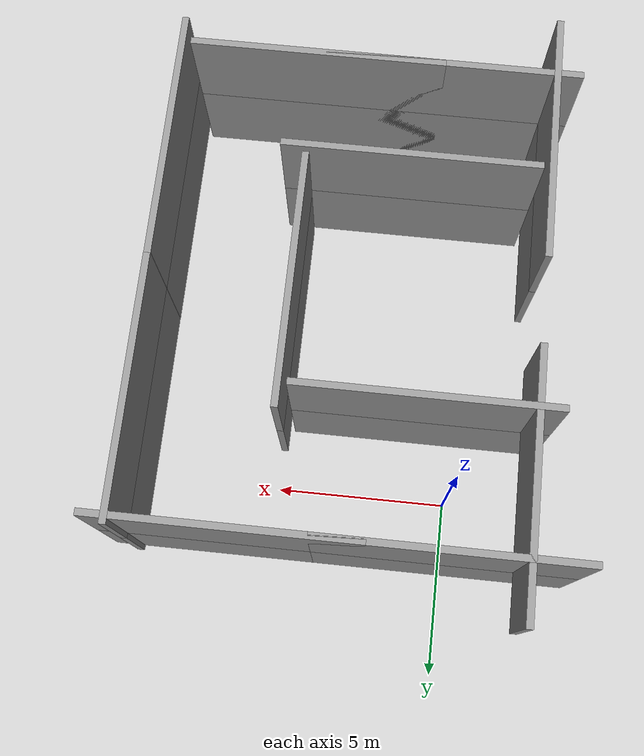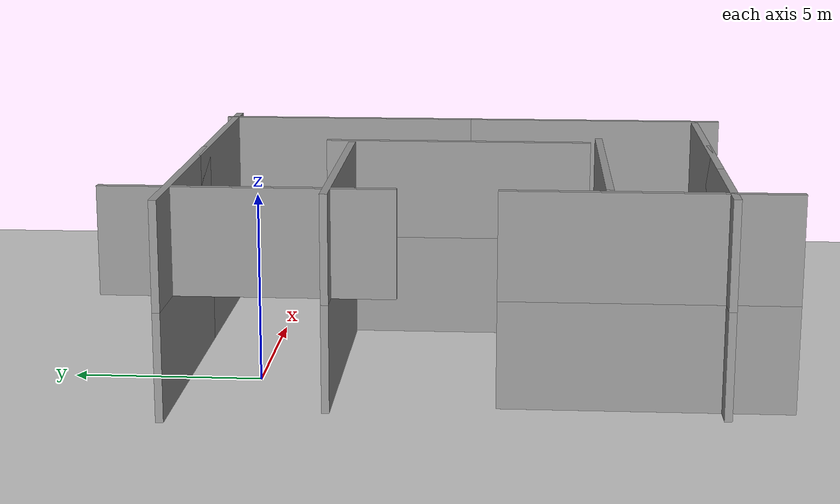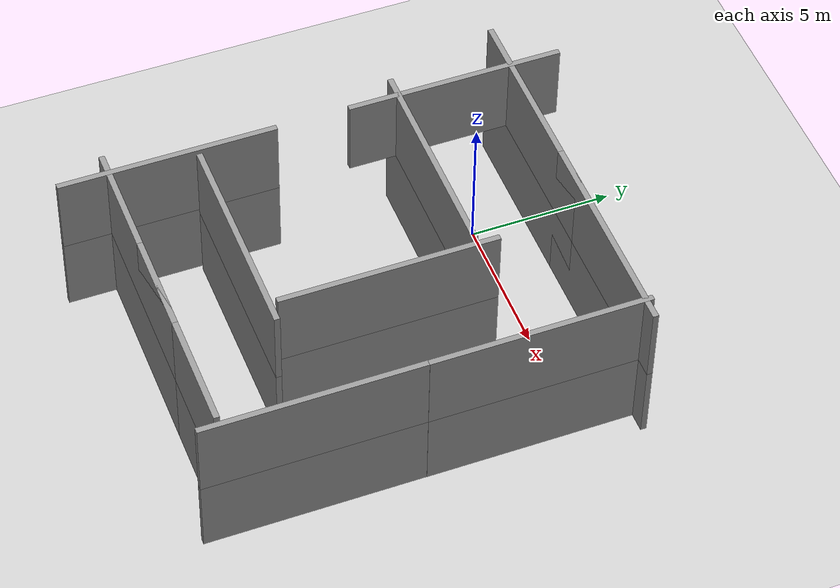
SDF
<sdf version="1.7">
 <world name="default">
  <light name="sun" type="directional">
   <pose>0 0 10 0 -0 0</pose>
   <diffuse>0.8 0.8 0.8 1</diffuse>
   <specular>0.2 0.2 0.2 1</specular>
   <attenuation>
    <range>1000</range>
    <constant>0.9</constant>
    <linear>0.01</linear>
    <quadratic>0.001</quadratic>
   </attenuation>
   <direction>-0.5 0.1 -0.9</direction>
   <spot><inner_angle>0</inner_angle><outer_angle>0</outer_angle><falloff>0</falloff></spot>
  </light>
  <model name="ground_plane">
   <static>1</static>
   <link name="link">
    <collision name="collision">
     <geometry><plane><normal>0 0 1</normal><size>100 100</size></plane></geometry>
     <surface>
      <contact><collide_bitmask>65535</collide_bitmask></contact>
      <friction><ode><mu>100</mu><mu2>50</mu2></ode></friction>
     </surface>
    </collision>
    <visual name="visual">
     <cast_shadows>0</cast_shadows>
     <geometry><plane><normal>0 0 1</normal><size>100 100</size></plane></geometry>
     <material>
      <script><uri>file://media/materials/scripts/gazebo.material</uri><name>Gazebo/Grey</name></script>
     </material>
    </visual>
   </link>
  </model>
  <physics name="default_physics" default="0" type="ode">
   <ode>
    <solver>
     <type>quick</type>
     <iters>10</iters>
     <sor>1.3</sor>
     <use_dynamic_moi_rescaling>0</use_dynamic_moi_rescaling>
    </solver>
    <constraints>
     <cfm>0</cfm>
     <erp>0.2</erp>
     <contact_max_correcting_vel>100</contact_max_correcting_vel>
     <contact_surface_layer>0.001</contact_surface_layer>
    </constraints>
   </ode>
   <max_step_size>0.004</max_step_size>
   <real_time_factor>1</real_time_factor>
   <real_time_update_rate>250</real_time_update_rate>
  </physics>
  <model name="grey_wall2">
   <static>1</static>
   <link name="link">
    <pose>0 0 1.4 0 -0 0</pose>
    <collision name="collision"><geometry><box><size>7.5 0.2 2.8</size></box></geometry></collision>
    <visual name="visual">
     <cast_shadows>0</cast_shadows>
     <geometry><box><size>7.5 0.2 2.8</size></box></geometry>
     <material>
      <script>
       <uri>model://grey_wall/materials/scripts</uri>
       <uri>model://grey_wall/materials/textures</uri>
       <name>vrc/grey_wall</name>
      </script>
     </material>
    </visual>
   </link>
   <pose>0 2 0 0 -0 0</pose>
  </model>
  <model name="grey_wall3">
   <static>1</static>
   <link name="link">
    <pose>0 0 1.4 0 -0 0</pose>
    <collision name="collision"><geometry><box><size>7.5 0.2 2.8</size></box></geometry></collision>
    <visual name="visual">
     <cast_shadows>0</cast_shadows>
     <geometry><box><size>7.5 0.2 2.8</size></box></geometry>
     <material>
      <script>
       <uri>model://grey_wall/materials/scripts</uri>
       <uri>model://grey_wall/materials/textures</uri>
       <name>vrc/grey_wall</name>
      </script>
     </material>
    </visual>
   </link>
   <pose>1 -2 0 0 -0 0</pose>
  </model>
  <model name="grey_wall4">
   <static>1</static>
   <link name="link">
    <pose>0 0 1.4 0 -0 0</pose>
    <collision name="collision"><geometry><box><size>7.5 0.2 2.8</size></box></geometry></collision>
    <visual name="visual">
     <cast_shadows>0</cast_shadows>
     <geometry><box><size>7.5 0.2 2.8</size></box></geometry>
     <material>
      <script>
       <uri>model://grey_wall/materials/scripts</uri>
       <uri>model://grey_wall/materials/textures</uri>
       <name>vrc/grey_wall</name>
      </script>
     </material>
    </visual>
   </link>
   <pose>6 2 0 0 -0 0</pose>
  </model>
  <model name="grey_wall5">
   <static>1</static>
   <link name="link">
    <pose>0 0 1.4 0 -0 0</pose>
    <collision name="collision"><geometry><box><size>7.5 0.2 2.8</size></box></geometry></collision>
    <visual name="visual">
     <cast_shadows>0</cast_shadows>
     <geometry><box><size>7.5 0.2 2.8</size></box></geometry>
     <material>
      <script>
       <uri>model://grey_wall/materials/scripts</uri>
       <uri>model://grey_wall/materials/textures</uri>
       <name>vrc/grey_wall</name>
      </script>
     </material>
    </visual>
   </link>
   <pose>9 -1.5 0 0 0 -1.57</pose>
  </model>
  <model name="grey_wall6">
   <static>1</static>
   <link name="link">
    <pose>0 0 1.4 0 -0 0</pose>
    <collision name="collision"><geometry><box><size>7.5 0.2 2.8</size></box></geometry></collision>
    <visual name="visual">
     <cast_shadows>0</cast_shadows>
     <geometry><box><size>7.5 0.2 2.8</size></box></geometry>
     <material>
      <script>
       <uri>model://grey_wall/materials/scripts</uri>
       <uri>model://grey_wall/materials/textures</uri>
       <name>vrc/grey_wall</name>
      </script>
     </material>
    </visual>
   </link>
   <pose>5 -5 0 0 0 -1.57</pose>
  </model>
  <model name="grey_wall7">
   <static>1</static>
   <link name="link">
    <pose>0 0 1.4 0 -0 0</pose>
    <collision name="collision"><geometry><box><size>7.5 0.2 2.8</size></box></geometry></collision>
    <visual name="visual">
     <cast_shadows>0</cast_shadows>
     <geometry><box><size>7.5 0.2 2.8</size></box></geometry>
     <material>
      <script>
       <uri>model://grey_wall/materials/scripts</uri>
       <uri>model://grey_wall/materials/textures</uri>
       <name>vrc/grey_wall</name>
      </script>
     </material>
    </visual>
   </link>
   <pose>9 -9 0 0 0 -1.57</pose>
  </model>
  <model name="grey_wall8">
   <static>1</static>
   <link name="link">
    <pose>0 0 1.4 0 -0 0</pose>
    <collision name="collision"><geometry><box><size>7.5 0.2 2.8</size></box></geometry></collision>
    <visual name="visual">
     <cast_shadows>0</cast_shadows>
     <geometry><box><size>7.5 0.2 2.8</size></box></geometry>
     <material>
      <script>
       <uri>model://grey_wall/materials/scripts</uri>
       <uri>model://grey_wall/materials/textures</uri>
       <name>vrc/grey_wall</name>
      </script>
     </material>
    </visual>
   </link>
   <pose>2 -9 0 0 -0 0</pose>
  </model>
  <model name="grey_wall9">
   <static>1</static>
   <link name="link">
    <pose>0 0 1.4 0 -0 0</pose>
    <collision name="collision"><geometry><box><size>7.5 0.2 2.8</size></box></geometry></collision>
    <visual name="visual">
     <cast_shadows>0</cast_shadows>
     <geometry><box><size>7.5 0.2 2.8</size></box></geometry>
     <material>
      <script>
       <uri>model://grey_wall/materials/scripts</uri>
       <uri>model://grey_wall/materials/textures</uri>
       <name>vrc/grey_wall</name>
      </script>
     </material>
    </visual>
   </link>
   <pose>5 -12 0 0 -0 0</pose>
  </model>
  <model name="grey_wall10">
   <static>1</static>
   <link name="link">
    <pose>0 0 1.4 0 -0 0</pose>
    <collision name="collision"><geometry><box><size>7.5 0.2 2.8</size></box></geometry></collision>
    <visual name="visual">
     <cast_shadows>0</cast_shadows>
     <geometry><box><size>7.5 0.2 2.8</size></box></geometry>
     <material>
      <script>
       <uri>model://grey_wall/materials/scripts</uri>
       <uri>model://grey_wall/materials/textures</uri>
       <name>vrc/grey_wall</name>
      </script>
     </material>
    </visual>
   </link>
   <pose>1 -12 0 0 -0 0</pose>
  </model>
  <model name="grey_wall11">
   <static>1</static>
   <link name="link">
    <pose>0 0 1.4 0 -0 0</pose>
    <collision name="collision"><geometry><box><size>7.5 0.2 2.8</size></box></geometry></collision>
    <visual name="visual">
     <cast_shadows>0</cast_shadows>
     <geometry><box><size>7.5 0.2 2.8</size></box></geometry>
     <material>
      <script>
       <uri>model://grey_wall/materials/scripts</uri>
       <uri>model://grey_wall/materials/textures</uri>
       <name>vrc/grey_wall</name>
      </script>
     </material>
    </visual>
   </link>
   <pose>-2 -10 0 0 0 -1.57</pose>
  </model>
  <model name="grey_wall_up">
   <static>1</static>
   <link name="link">
    <pose>0 0 1.4 0 -0 0</pose>
    <collision name="collision"><geometry><box><size>7.5 0.2 2.8</size></box></geometry></collision>
    <visual name="visual">
     <cast_shadows>0</cast_shadows>
     <geometry><box><size>7.5 0.2 2.8</size></box></geometry>
     <material>
      <script>
       <uri>model://grey_wall/materials/scripts</uri>
       <uri>model://grey_wall/materials/textures</uri>
       <name>vrc/grey_wall</name>
      </script>
     </material>
    </visual>
   </link>
   <pose>-2 0 2.8 0 0 -1.57</pose>
  </model>
  <model name="grey_wall2_up">
   <static>1</static>
   <link name="link">
    <pose>0 0 1.4 0 -0 0</pose>
    <collision name="collision"><geometry><box><size>7.5 0.2 2.8</size></box></geometry></collision>
    <visual name="visual">
     <cast_shadows>0</cast_shadows>
     <geometry><box><size>7.5 0.2 2.8</size></box></geometry>
     <material>
      <script>
       <uri>model://grey_wall/materials/scripts</uri>
       <uri>model://grey_wall/materials/textures</uri>
       <name>vrc/grey_wall</name>
      </script>
     </material>
    </visual>
   </link>
   <pose>0 2 2.8 0 -0 0</pose>
  </model>
  <model name="grey_wall3_up">
   <static>1</static>
   <link name="link">
    <pose>0 0 1.4 0 -0 0</pose>
    <collision name="collision"><geometry><box><size>7.5 0.2 2.8</size></box></geometry></collision>
    <visual name="visual">
     <cast_shadows>0</cast_shadows>
     <geometry><box><size>7.5 0.2 2.8</size></box></geometry>
     <material>
      <script>
       <uri>model://grey_wall/materials/scripts</uri>
       <uri>model://grey_wall/materials/textures</uri>
       <name>vrc/grey_wall</name>
      </script>
     </material>
    </visual>
   </link>
   <pose>1 -2 2.8 0 -0 0</pose>
  </model>
  <model name="grey_wall4_up">
   <static>1</static>
   <link name="link">
    <pose>0 0 1.4 0 -0 0</pose>
    <collision name="collision"><geometry><box><size>7.5 0.2 2.8</size></box></geometry></collision>
    <visual name="visual">
     <cast_shadows>0</cast_shadows>
     <geometry><box><size>7.5 0.2 2.8</size></box></geometry>
     <material>
      <script>
       <uri>model://grey_wall/materials/scripts</uri>
       <uri>model://grey_wall/materials/textures</uri>
       <name>vrc/grey_wall</name>
      </script>
     </material>
    </visual>
   </link>
   <pose>6 2 2.8 0 -0 0</pose>
  </model>
  <model name="grey_wall5_up">
   <static>1</static>
   <link name="link">
    <pose>0 0 1.4 0 -0 0</pose>
    <collision name="collision"><geometry><box><size>7.5 0.2 2.8</size></box></geometry></collision>
    <visual name="visual">
     <cast_shadows>0</cast_shadows>
     <geometry><box><size>7.5 0.2 2.8</size></box></geometry>
     <material>
      <script>
       <uri>model://grey_wall/materials/scripts</uri>
       <uri>model://grey_wall/materials/textures</uri>
       <name>vrc/grey_wall</name>
      </script>
     </material>
    </visual>
   </link>
   <pose>9 -1.5 2.8 0 0 -1.57</pose>
  </model>
  <model name="grey_wall6_up">
   <static>1</static>
   <link name="link">
    <pose>0 0 1.4 0 -0 0</pose>
    <collision name="collision"><geometry><box><size>7.5 0.2 2.8</size></box></geometry></collision>
    <visual name="visual">
     <cast_shadows>0</cast_shadows>
     <geometry><box><size>7.5 0.2 2.8</size></box></geometry>
     <material>
      <script>
       <uri>model://grey_wall/materials/scripts</uri>
       <uri>model://grey_wall/materials/textures</uri>
       <name>vrc/grey_wall</name>
      </script>
     </material>
    </visual>
   </link>
   <pose>5 -5 2.8 0 0 -1.57</pose>
  </model>
  <model name="grey_wall7_up">
   <static>1</static>
   <link name="link">
    <pose>0 0 1.4 0 -0 0</pose>
    <collision name="collision"><geometry><box><size>7.5 0.2 2.8</size></box></geometry></collision>
    <visual name="visual">
     <cast_shadows>0</cast_shadows>
     <geometry><box><size>7.5 0.2 2.8</size></box></geometry>
     <material>
      <script>
       <uri>model://grey_wall/materials/scripts</uri>
       <uri>model://grey_wall/materials/textures</uri>
       <name>vrc/grey_wall</name>
      </script>
     </material>
    </visual>
   </link>
   <pose>9 -9 2.8 0 0 -1.57</pose>
  </model>
  <model name="grey_wall8_up">
   <static>1</static>
   <link name="link">
    <pose>0 0 1.4 0 -0 0</pose>
    <collision name="collision"><geometry><box><size>7.5 0.2 2.8</size></box></geometry></collision>
    <visual name="visual">
     <cast_shadows>0</cast_shadows>
     <geometry><box><size>7.5 0.2 2.8</size></box></geometry>
     <material>
      <script>
       <uri>model://grey_wall/materials/scripts</uri>
       <uri>model://grey_wall/materials/textures</uri>
       <name>vrc/grey_wall</name>
      </script>
     </material>
    </visual>
   </link>
   <pose>2 -9 2.8 0 -0 0</pose>
  </model>
  <model name="grey_wall9_up">
   <static>1</static>
   <link name="link">
    <pose>0 0 1.4 0 -0 0</pose>
    <collision name="collision"><geometry><box><size>7.5 0.2 2.8</size></box></geometry></collision>
    <visual name="visual">
     <cast_shadows>0</cast_shadows>
     <geometry><box><size>7.5 0.2 2.8</size></box></geometry>
     <material>
      <script>
       <uri>model://grey_wall/materials/scripts</uri>
       <uri>model://grey_wall/materials/textures</uri>
       <name>vrc/grey_wall</name>
      </script>
     </material>
    </visual>
   </link>
   <pose>5 -12 2.8 0 -0 0</pose>
  </model>
  <model name="grey_wall10_up">
   <static>1</static>
   <link name="link">
    <pose>0 0 1.4 0 -0 0</pose>
    <collision name="collision"><geometry><box><size>7.5 0.2 2.8</size></box></geometry></collision>
    <visual name="visual">
     <cast_shadows>0</cast_shadows>
     <geometry><box><size>7.5 0.2 2.8</size></box></geometry>
     <material>
      <script>
       <uri>model://grey_wall/materials/scripts</uri>
       <uri>model://grey_wall/materials/textures</uri>
       <name>vrc/grey_wall</name>
      </script>
     </material>
    </visual>
   </link>
   <pose>1 -12 2.8 0 -0 0</pose>
  </model>
  <model name="grey_wall11_up">
   <static>1</static>
   <link name="link">
    <pose>0 0 1.4 0 -0 0</pose>
    <collision name="collision"><geometry><box><size>7.5 0.2 2.8</size></box></geometry></collision>
    <visual name="visual">
     <cast_shadows>0</cast_shadows>
     <geometry><box><size>7.5 0.2 2.8</size></box></geometry>
     <material>
      <script>
       <uri>model://grey_wall/materials/scripts</uri>
       <uri>model://grey_wall/materials/textures</uri>
       <name>vrc/grey_wall</name>
      </script>
     </material>
    </visual>
   </link>
   <pose>-2 -10 2.8 0 0 -1.57</pose>
  </model>
  <gravity>0 0 -9.8066</gravity>
  <magnetic_field>6e-06 2.3e-05 -4.2e-05</magnetic_field>
  <atmosphere type="adiabatic"/>
  <scene><ambient>0.4 0.4 0.4 1</ambient><background>0.7 0.7 0.7 1</background><shadows>1</shadows></scene>
  <spherical_coordinates>
   <surface_model>EARTH_WGS84</surface_model>
   <latitude_deg>0</latitude_deg>
   <longitude_deg>0</longitude_deg>
   <elevation>0</elevation>
   <heading_deg>0</heading_deg>
  </spherical_coordinates>
 </world>
</sdf>
